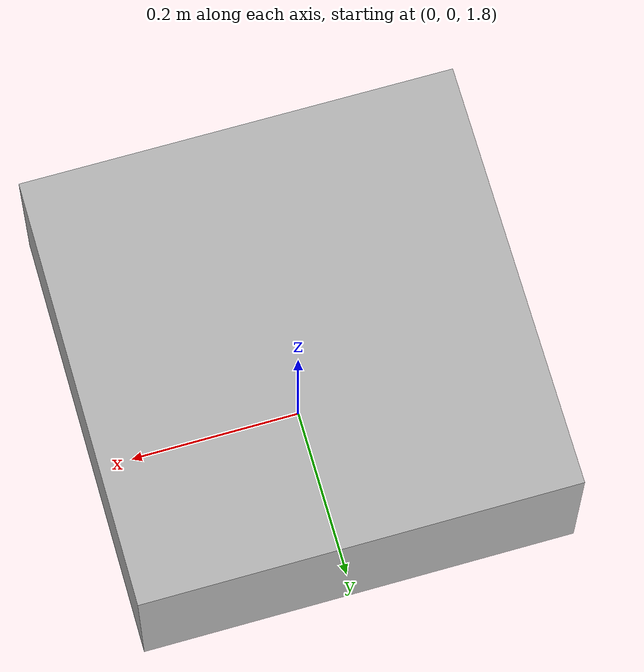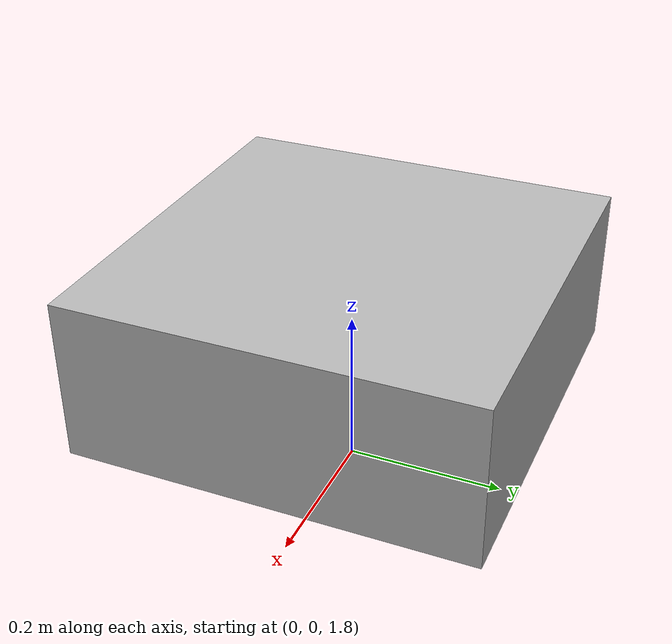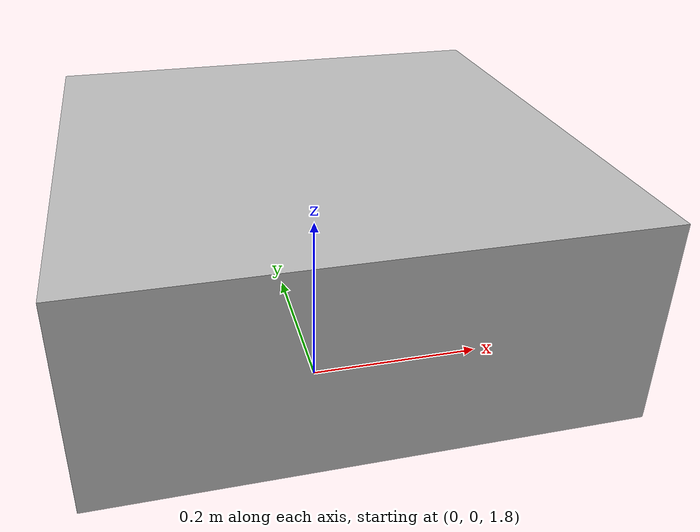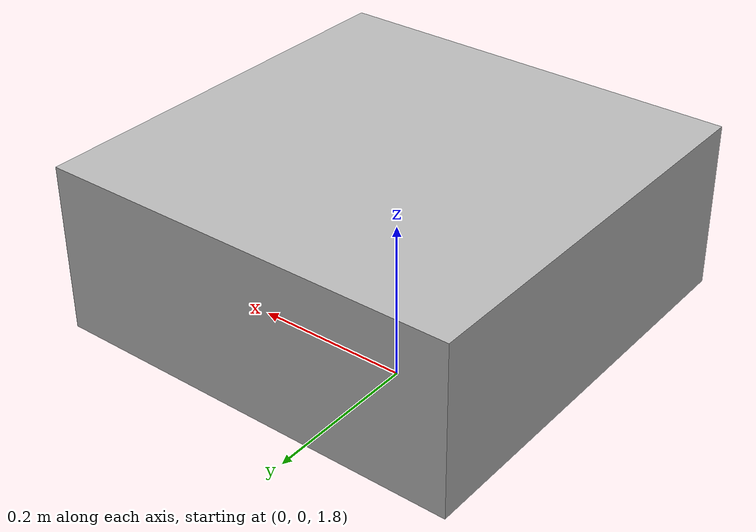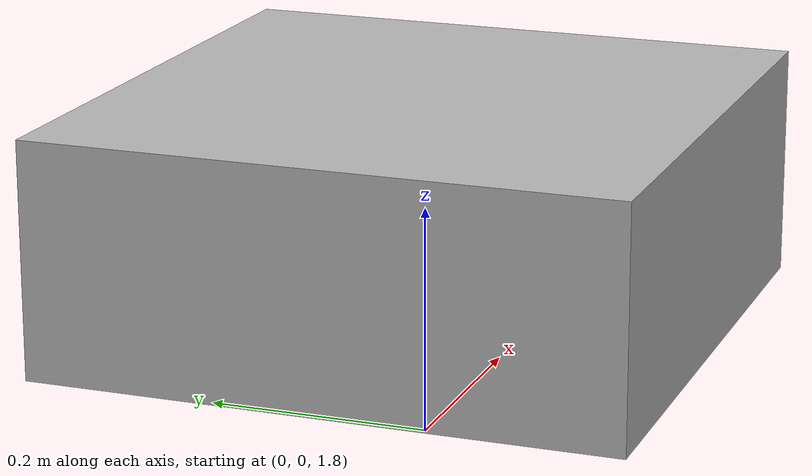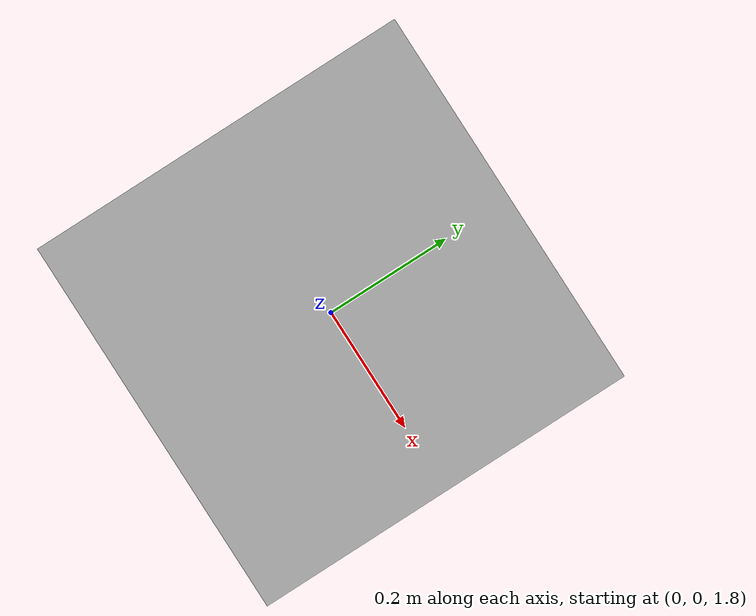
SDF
<sdf version="1.6">
  <world name="default">
<include>
      <uri>model://simple_drone</uri>
      <pose>0 0 1 0 0 0</pose>
    </include>
  </world>
</sdf>

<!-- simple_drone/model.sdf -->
<sdf version="1.6">
  <model name="simple_drone">
    <link name="base_link">
      <pose>0 0 1 0 0 0</pose>

      <inertial>
        <mass>1.0</mass>
      </inertial>

      <collision name="collision">
        <geometry>
          <box>
            <size>0.5 0.5 0.2</size>
          </box>
        </geometry>
      </collision>

      <visual name="visual">
        <geometry>
          <box>
            <size>0.5 0.5 0.2</size>
          </box>
        </geometry>
      </visual>

</link>
<plugin
  filename="gz-sim-velocity-control-system"
  name="gz::sim::systems::VelocityControl">

  <topic>/cmd_vel</topic>

</plugin>
  </model>
</sdf>
